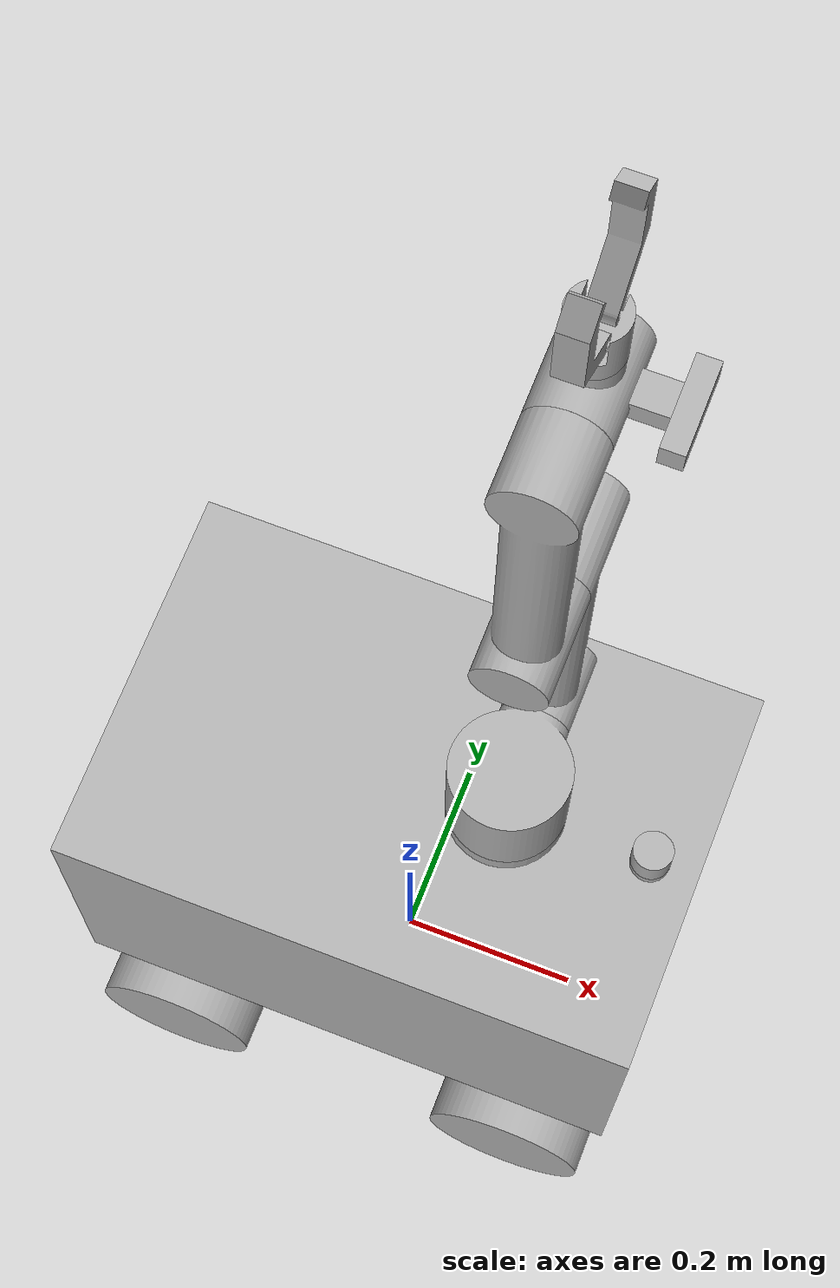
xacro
<?xml version="1.0" ?>
<robot name="amow" xmlns:xacro="http://www.ros.org/wiki/xacro">

<xacro:include filename="$(find amow_description)/urdf/materials.xacro" />
<xacro:include filename="$(find amow_description)/urdf/amow.trans" />
<xacro:include filename="$(find amow_description)/urdf/amow.gazebo" />
<link name="base_link">
  <inertial>
    <origin xyz="0.00023137438094239429 0.0 0.3070178414739575" rpy="0 0 0"/>
    <mass value="876.2402280918454"/>
    <inertia ixx="27.778467" iyy="43.612873" izz="36.694342" ixy="-0.0" iyz="0.0" ixz="-0.049645"/>
  </inertial>
  <visual>
    <origin xyz="0 0 0" rpy="0 0 0"/>
    <geometry>
      <mesh filename="package://amow_description/meshes/base_link.stl" scale="0.001 0.001 0.001"/>
    </geometry>
    <material name="silver"/>
  </visual>
  <collision>
    <origin xyz="0 0 0" rpy="0 0 0"/>
    <geometry>
      <mesh filename="package://amow_description/meshes/base_link.stl" scale="0.001 0.001 0.001"/>
    </geometry>
  </collision>
</link>

<link name="left_front_wheel_1">
  <inertial>
    <origin xyz="2.7755575615628914e-17 -0.03 2.7755575615628914e-17" rpy="0 0 0"/>
    <mass value="1.3421472864758142"/>
    <inertia ixx="0.002972" iyy="0.005138" izz="0.002972" ixy="0.0" iyz="0.0" ixz="0.0"/>
  </inertial>
  <visual>
    <origin xyz="-0.2 0.17 -0.0875" rpy="0 0 0"/>
    <geometry>
      <mesh filename="package://amow_description/meshes/left_front_wheel_1.stl" scale="0.001 0.001 0.001"/>
    </geometry>
    <material name="silver"/>
  </visual>
  <collision>
    <origin xyz="-0.2 0.17 -0.0875" rpy="0 0 0"/>
    <geometry>
      <mesh filename="package://amow_description/meshes/left_front_wheel_1.stl" scale="0.001 0.001 0.001"/>
    </geometry>
  </collision>
</link>

<link name="left_back_wheel_1">
  <inertial>
    <origin xyz="-2.7755575615628914e-17 -0.03 2.7755575615628914e-17" rpy="0 0 0"/>
    <mass value="1.3421472864758142"/>
    <inertia ixx="0.002972" iyy="0.005138" izz="0.002972" ixy="0.0" iyz="0.0" ixz="0.0"/>
  </inertial>
  <visual>
    <origin xyz="0.2 0.17 -0.0875" rpy="0 0 0"/>
    <geometry>
      <mesh filename="package://amow_description/meshes/left_back_wheel_1.stl" scale="0.001 0.001 0.001"/>
    </geometry>
    <material name="silver"/>
  </visual>
  <collision>
    <origin xyz="0.2 0.17 -0.0875" rpy="0 0 0"/>
    <geometry>
      <mesh filename="package://amow_description/meshes/left_back_wheel_1.stl" scale="0.001 0.001 0.001"/>
    </geometry>
  </collision>
</link>

<link name="right_front_wheel_1">
  <inertial>
    <origin xyz="2.7755575615628914e-17 0.03 2.7755575615628914e-17" rpy="0 0 0"/>
    <mass value="1.3421472864758142"/>
    <inertia ixx="0.002972" iyy="0.005138" izz="0.002972" ixy="0.0" iyz="0.0" ixz="0.0"/>
  </inertial>
  <visual>
    <origin xyz="-0.2 -0.17 -0.0875" rpy="0 0 0"/>
    <geometry>
      <mesh filename="package://amow_description/meshes/right_front_wheel_1.stl" scale="0.001 0.001 0.001"/>
    </geometry>
    <material name="silver"/>
  </visual>
  <collision>
    <origin xyz="-0.2 -0.17 -0.0875" rpy="0 0 0"/>
    <geometry>
      <mesh filename="package://amow_description/meshes/right_front_wheel_1.stl" scale="0.001 0.001 0.001"/>
    </geometry>
  </collision>
</link>

<link name="right_back_wheel_1">
  <inertial>
    <origin xyz="-2.7755575615628914e-17 0.03 2.7755575615628914e-17" rpy="0 0 0"/>
    <mass value="11.328877633156067"/>
    <inertia ixx="0.025083" iyy="0.043368" izz="0.025083" ixy="-0.0" iyz="0.0" ixz="-0.0"/>
  </inertial>
  <visual>
    <origin xyz="0.2 -0.17 -0.0875" rpy="0 0 0"/>
    <geometry>
      <mesh filename="package://amow_description/meshes/right_back_wheel_1.stl" scale="0.001 0.001 0.001"/>
    </geometry>
    <material name="silver"/>
  </visual>
  <collision>
    <origin xyz="0.2 -0.17 -0.0875" rpy="0 0 0"/>
    <geometry>
      <mesh filename="package://amow_description/meshes/right_back_wheel_1.stl" scale="0.001 0.001 0.001"/>
    </geometry>
  </collision>
</link>

<link name="bbase_1">
  <inertial>
    <origin xyz="-2.7755575615628914e-17 0.0026198613106947375 0.05013388123334572" rpy="0 0 0"/>
    <mass value="3.1853238943739357"/>
    <inertia ixx="0.005841" iyy="0.005381" izz="0.006055" ixy="-0.0" iyz="-2.6e-05" ixz="0.0"/>
  </inertial>
  <visual>
    <origin xyz="-0.1 -0.0 -0.5625" rpy="0 0 0"/>
    <geometry>
      <mesh filename="package://amow_description/meshes/bbase_1.stl" scale="0.001 0.001 0.001"/>
    </geometry>
    <material name="silver"/>
  </visual>
  <collision>
    <origin xyz="-0.1 -0.0 -0.5625" rpy="0 0 0"/>
    <geometry>
      <mesh filename="package://amow_description/meshes/bbase_1.stl" scale="0.001 0.001 0.001"/>
    </geometry>
  </collision>
</link>

<link name="link1_1">
  <inertial>
    <origin xyz="3.418189307990982e-08 0.036794334251854036 0.183288328085229" rpy="0 0 0"/>
    <mass value="4.033545334173836"/>
    <inertia ixx="0.074267" iyy="0.073641" izz="0.002763" ixy="0.0" iyz="0.000314" ixz="0.0"/>
  </inertial>
  <visual>
    <origin xyz="-0.1 -0.07 -0.615738" rpy="0 0 0"/>
    <geometry>
      <mesh filename="package://amow_description/meshes/link1_1.stl" scale="0.001 0.001 0.001"/>
    </geometry>
    <material name="silver"/>
  </visual>
  <collision>
    <origin xyz="-0.1 -0.07 -0.615738" rpy="0 0 0"/>
    <geometry>
      <mesh filename="package://amow_description/meshes/link1_1.stl" scale="0.001 0.001 0.001"/>
    </geometry>
  </collision>
</link>

<link name="link2_1">
  <inertial>
    <origin xyz="3.16172757419686e-08 -0.053567297650269706 0.1362943004011924" rpy="0 0 0"/>
    <mass value="3.567438458974954"/>
    <inertia ixx="0.049307" iyy="0.048671" izz="0.002555" ixy="0.0" iyz="0.000326" ixz="-0.0"/>
  </inertial>
  <visual>
    <origin xyz="-0.1 -0.060192 -0.968676" rpy="0 0 0"/>
    <geometry>
      <mesh filename="package://amow_description/meshes/link2_1.stl" scale="0.001 0.001 0.001"/>
    </geometry>
    <material name="silver"/>
  </visual>
  <collision>
    <origin xyz="-0.1 -0.060192 -0.968676" rpy="0 0 0"/>
    <geometry>
      <mesh filename="package://amow_description/meshes/link2_1.stl" scale="0.001 0.001 0.001"/>
    </geometry>
  </collision>
</link>

<link name="link3_1">
  <inertial>
    <origin xyz="0.0023393009508379248 0.04523259443657402 0.0024130586682105104" rpy="0 0 0"/>
    <mass value="1.050315969436746"/>
    <inertia ixx="0.001026" iyy="0.0008" izz="0.001064" ixy="-7e-06" iyz="-3e-06" ixz="6e-06"/>
  </inertial>
  <visual>
    <origin xyz="-0.1 -0.04372 -1.267364" rpy="0 0 0"/>
    <geometry>
      <mesh filename="package://amow_description/meshes/link3_1.stl" scale="0.001 0.001 0.001"/>
    </geometry>
    <material name="silver"/>
  </visual>
  <collision>
    <origin xyz="-0.1 -0.04372 -1.267364" rpy="0 0 0"/>
    <geometry>
      <mesh filename="package://amow_description/meshes/link3_1.stl" scale="0.001 0.001 0.001"/>
    </geometry>
  </collision>
</link>

<link name="gripper_1">
  <inertial>
    <origin xyz="1.304512053934559e-15 -1.4480590843080066e-07 0.017600617663721563" rpy="0 0 0"/>
    <mass value="0.1525642910055436"/>
    <inertia ixx="4.8e-05" iyy="6.1e-05" izz="5.4e-05" ixy="0.0" iyz="0.0" ixz="-0.0"/>
  </inertial>
  <visual>
    <origin xyz="-0.1 -0.09009 -1.312364" rpy="0 0 0"/>
    <geometry>
      <mesh filename="package://amow_description/meshes/gripper_1.stl" scale="0.001 0.001 0.001"/>
    </geometry>
    <material name="silver"/>
  </visual>
  <collision>
    <origin xyz="-0.1 -0.09009 -1.312364" rpy="0 0 0"/>
    <geometry>
      <mesh filename="package://amow_description/meshes/gripper_1.stl" scale="0.001 0.001 0.001"/>
    </geometry>
  </collision>
</link>

<link name="finger1_1">
  <inertial>
    <origin xyz="-0.011999999999996055 0.031346884370935524 0.04435681864948826" rpy="0 0 0"/>
    <mass value="0.41659455423848385"/>
    <inertia ixx="0.000516" iyy="0.000432" izz="0.000124" ixy="0.0" iyz="-0.000145" ixz="0.0"/>
  </inertial>
  <visual>
    <origin xyz="-0.112 -0.102635 -1.344344" rpy="0 0 0"/>
    <geometry>
      <mesh filename="package://amow_description/meshes/finger1_1.stl" scale="0.001 0.001 0.001"/>
    </geometry>
    <material name="silver"/>
  </visual>
  <collision>
    <origin xyz="-0.112 -0.102635 -1.344344" rpy="0 0 0"/>
    <geometry>
      <mesh filename="package://amow_description/meshes/finger1_1.stl" scale="0.001 0.001 0.001"/>
    </geometry>
  </collision>
</link>

<link name="finger2_1">
  <inertial>
    <origin xyz="0.012000000000003952 -0.03134717398275191 0.04435681864948826" rpy="0 0 0"/>
    <mass value="0.4165945542384838"/>
    <inertia ixx="0.000516" iyy="0.000432" izz="0.000124" ixy="0.0" iyz="0.000145" ixz="0.0"/>
  </inertial>
  <visual>
    <origin xyz="-0.088 -0.077545 -1.344344" rpy="0 0 0"/>
    <geometry>
      <mesh filename="package://amow_description/meshes/finger2_1.stl" scale="0.001 0.001 0.001"/>
    </geometry>
    <material name="silver"/>
  </visual>
  <collision>
    <origin xyz="-0.088 -0.077545 -1.344344" rpy="0 0 0"/>
    <geometry>
      <mesh filename="package://amow_description/meshes/finger2_1.stl" scale="0.001 0.001 0.001"/>
    </geometry>
  </collision>
</link>

<link name="camera_link_1">
  <inertial>
    <origin xyz="0.009999999999999981 7.919311523219008e-08 -2.609863281044511e-07" rpy="0 0 0"/>
    <mass value="0.21724802079089342"/>
    <inertia ixx="0.000124" iyy="1.7e-05" izz="0.000122" ixy="0.0" iyz="0.0" ixz="0.0"/>
  </inertial>
  <visual>
    <origin xyz="-0.165 -0.091835 -1.267364" rpy="0 0 0"/>
    <geometry>
      <mesh filename="package://amow_description/meshes/camera_link_1.stl" scale="0.001 0.001 0.001"/>
    </geometry>
    <material name="silver"/>
  </visual>
  <collision>
    <origin xyz="-0.165 -0.091835 -1.267364" rpy="0 0 0"/>
    <geometry>
      <mesh filename="package://amow_description/meshes/camera_link_1.stl" scale="0.001 0.001 0.001"/>
    </geometry>
  </collision>
</link>

<link name="lidar_1">
  <inertial>
    <origin xyz="-2.7755575615628914e-17 0.0 0.015000000000000124" rpy="0 0 0"/>
    <mass value="0.22694865329532654"/>
    <inertia ixx="4e-05" iyy="4e-05" izz="4.5e-05" ixy="-0.0" iyz="-0.0" ixz="0.0"/>
  </inertial>
  <visual>
    <origin xyz="-0.25 -0.0 -0.5525" rpy="0 0 0"/>
    <geometry>
      <mesh filename="package://amow_description/meshes/lidar_1.stl" scale="0.001 0.001 0.001"/>
    </geometry>
    <material name="silver"/>
  </visual>
  <collision>
    <origin xyz="-0.25 -0.0 -0.5525" rpy="0 0 0"/>
    <geometry>
      <mesh filename="package://amow_description/meshes/lidar_1.stl" scale="0.001 0.001 0.001"/>
    </geometry>
  </collision>
</link>

<joint name="Rev1" type="continuous">
  <origin xyz="0.2 -0.17 0.0875" rpy="0 0 0"/>
  <parent link="base_link"/>
  <child link="left_front_wheel_1"/>
  <axis xyz="0.0 -1.0 0.0"/>
</joint>

<joint name="Rev2" type="continuous">
  <origin xyz="-0.2 -0.17 0.0875" rpy="0 0 0"/>
  <parent link="base_link"/>
  <child link="left_back_wheel_1"/>
  <axis xyz="0.0 -1.0 0.0"/>
</joint>

<joint name="Rev3" type="continuous">
  <origin xyz="0.2 0.17 0.0875" rpy="0 0 0"/>
  <parent link="base_link"/>
  <child link="right_front_wheel_1"/>
  <axis xyz="0.0 1.0 0.0"/>
</joint>

<joint name="Rev4" type="continuous">
  <origin xyz="-0.2 0.17 0.0875" rpy="0 0 0"/>
  <parent link="base_link"/>
  <child link="right_back_wheel_1"/>
  <axis xyz="0.0 1.0 0.0"/>
</joint>

<joint name="Rev5" type="continuous">
  <origin xyz="0.1 0.0 0.5625" rpy="0 0 0"/>
  <parent link="base_link"/>
  <child link="bbase_1"/>
  <axis xyz="0.0 0.0 1.0"/>
</joint>

<joint name="Rev6" type="continuous">
  <origin xyz="0.0 0.07 0.053238" rpy="0 0 0"/>
  <parent link="bbase_1"/>
  <child link="link1_1"/>
  <axis xyz="0.0 1.0 0.0"/>
</joint>

<joint name="Rev7" type="continuous">
  <origin xyz="0.0 -0.009808 0.352938" rpy="0 0 0"/>
  <parent link="link1_1"/>
  <child link="link2_1"/>
  <axis xyz="0.0 -1.0 0.0"/>
</joint>

<joint name="Rev8" type="continuous">
  <origin xyz="0.0 -0.016472 0.298688" rpy="0 0 0"/>
  <parent link="link2_1"/>
  <child link="link3_1"/>
  <axis xyz="0.0 1.0 0.0"/>
</joint>

<joint name="Rev9" type="continuous">
  <origin xyz="0.0 0.04637 0.045" rpy="0 0 0"/>
  <parent link="link3_1"/>
  <child link="gripper_1"/>
  <axis xyz="0.0 0.0 1.0"/>
</joint>

<joint name="Rev10" type="continuous">
  <origin xyz="0.012 0.012545 0.03198" rpy="0 0 0"/>
  <parent link="gripper_1"/>
  <child link="finger1_1"/>
  <axis xyz="-1.0 0.0 0.0"/>
</joint>

<joint name="Rev11" type="continuous">
  <origin xyz="-0.012 -0.012545 0.03198" rpy="0 0 0"/>
  <parent link="gripper_1"/>
  <child link="finger2_1"/>
  <axis xyz="1.0 0.0 0.0"/>
</joint>

<joint name="Rigid12" type="fixed">
  <origin xyz="0.065 0.048115 0.0" rpy="0 0 0"/>
  <parent link="link3_1"/>
  <child link="camera_link_1"/>
</joint>

<joint name="Rigid13" type="fixed">
  <origin xyz="0.25 0.0 0.5525" rpy="0 0 0"/>
  <parent link="base_link"/>
  <child link="lidar_1"/>
</joint>

<gazebo>
 <plugin filename="libgazebo_ros_control.so" name="gazebo_ros_control">
      <robotNamespace>/amow</robotNamespace>
    </plugin>
</gazebo>

</robot>

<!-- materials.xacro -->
<robot name="amow" xmlns:xacro="http://www.ros.org/wiki/xacro" >

<material name="silver">
  <color rgba="0.700 0.700 0.700 1.000"/>
</material>

</robot>

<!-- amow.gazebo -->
<robot name="amow" xmlns:xacro="http://www.ros.org/wiki/xacro" >

<xacro:property name="body_color" value="Gazebo/Silver" />

<gazebo>
  <plugin name="control" filename="libgazebo_ros_control.so"/>
</gazebo>
<gazebo reference="base_link">
  <material>${body_color}</material>
  <mu1>0.2</mu1>
  <mu2>0.2</mu2>
  <selfCollide>true</selfCollide>
  <gravity>true</gravity>
</gazebo>

<gazebo reference="left_front_wheel_1">
  <material>${body_color}</material>
  <mu1>2000</mu1>
  <mu2>2000</mu2>
  <selfCollide>true</selfCollide>
</gazebo>

<gazebo reference="left_back_wheel_1">
  <material>${body_color}</material>
  <mu1>2000</mu1>
  <mu2>2000</mu2>
  <selfCollide>true</selfCollide>
</gazebo>

<gazebo reference="right_front_wheel_1">
  <material>${body_color}</material>
  <mu1>2000</mu1>
  <mu2>2000</mu2>
  <selfCollide>true</selfCollide>
</gazebo>

<gazebo reference="right_back_wheel_1">
  <material>${body_color}</material>
  <mu1>2000</mu1>
  <mu2>2000</mu2>
  <selfCollide>true</selfCollide>
</gazebo>

<gazebo reference="bbase_1">
  <material>${body_color}</material>
  <mu1>0.2</mu1>
  <mu2>0.2</mu2>
  <selfCollide>true</selfCollide>
</gazebo>

<gazebo reference="link1_1">
  <material>${body_color}</material>
  <mu1>0.2</mu1>
  <mu2>0.2</mu2>
  <selfCollide>true</selfCollide>
</gazebo>

<gazebo reference="link2_1">
  <material>${body_color}</material>
  <mu1>0.2</mu1>
  <mu2>0.2</mu2>
  <selfCollide>true</selfCollide>
</gazebo>

<gazebo reference="link3_1">
  <material>${body_color}</material>
  <mu1>0.2</mu1>
  <mu2>0.2</mu2>
  <selfCollide>true</selfCollide>
</gazebo>

<gazebo reference="gripper_1">
  <material>${body_color}</material>
  <mu1>0.2</mu1>
  <mu2>0.2</mu2>
  <selfCollide>true</selfCollide>
</gazebo>

<gazebo reference="finger1_1">
  <material>${body_color}</material>
  <mu1>0.2</mu1>
  <mu2>0.2</mu2>
  <selfCollide>true</selfCollide>
</gazebo>

<gazebo reference="finger2_1">
  <material>${body_color}</material>
  <mu1>0.2</mu1>
  <mu2>0.2</mu2>
  <selfCollide>true</selfCollide>
</gazebo>

<gazebo reference="camera_link_1">
  <material>${body_color}</material>
  <mu1>0.2</mu1>
  <mu2>0.2</mu2>
  <selfCollide>true</selfCollide>
</gazebo>

<gazebo reference="lidar_1">
  <material>${body_color}</material>
  <mu1>0.2</mu1>
  <mu2>0.2</mu2>
  <selfCollide>true</selfCollide>
</gazebo>

</robot>
